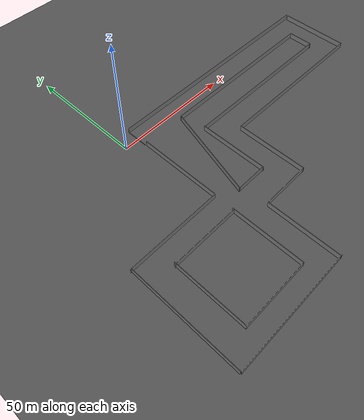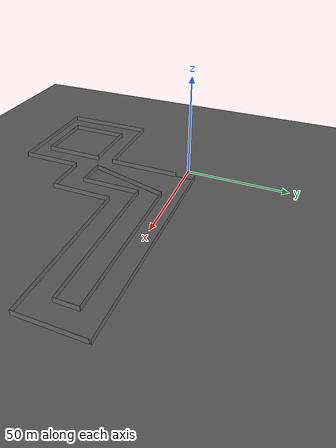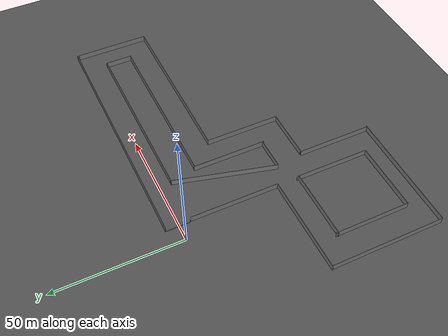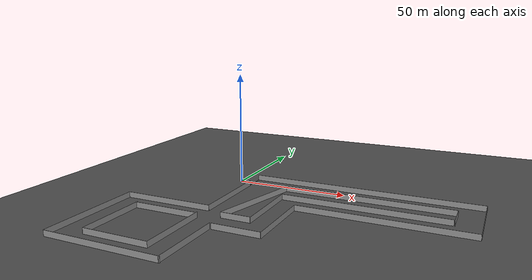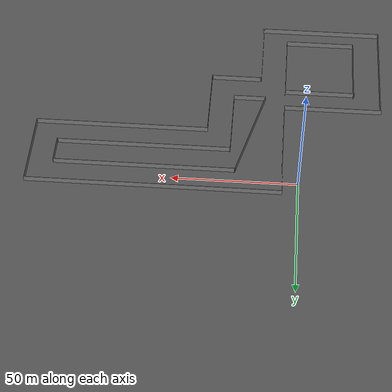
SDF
<sdf version="1.6">
 <world name="default">
  <light name="sun" type="directional">
   <pose>0 0 10 0 -0 0</pose>
   <diffuse>0.8 0.8 0.8 1</diffuse>
   <specular>0.2 0.2 0.2 1</specular>
   <attenuation>
    <range>1000</range>
    <constant>0.9</constant>
    <linear>0.01</linear>
    <quadratic>0.001</quadratic>
   </attenuation>
   <direction>-0.5 0.1 -0.9</direction>
  </light>
  <physics name="default_physics" default="0" type="ode">
   <max_step_size>0.004</max_step_size>
   <real_time_factor>1</real_time_factor>
   <real_time_update_rate>250</real_time_update_rate>
   <ode>
    <solver>
     <type>quick</type>
     <iters>10</iters>
     <sor>1.3</sor>
     <use_dynamic_moi_rescaling>0</use_dynamic_moi_rescaling>
    </solver>
    <constraints>
     <cfm>0</cfm>
     <erp>0.2</erp>
     <contact_max_correcting_vel>100</contact_max_correcting_vel>
     <contact_surface_layer>0.001</contact_surface_layer>
    </constraints>
   </ode>
  </physics>
  <model name="ground_plane">
   <static>1</static>
   <link name="link">
    <collision name="collision">
     <geometry><plane><normal>0 0 1</normal><size>1000 1000</size></plane></geometry>
     <surface>
      <contact><collide_bitmask>65535</collide_bitmask></contact>
      <friction><ode><mu>100</mu><mu2>50</mu2></ode></friction>
     </surface>
    </collision>
    <visual name="visual">
     <cast_shadows>0</cast_shadows>
     <geometry><plane><normal>0 0 1</normal><size>1000 1000</size></plane></geometry>
     <material>
      <script><uri>file://media/materials/scripts/gazebo.material</uri><name>Gazebo/Grey</name></script>
     </material>
    </visual>
   </link>
  </model>
  <model name="asphalt_plane">
   <static>1</static>
   <link name="link">
    <collision name="collision"><geometry><box><size>500 500 0.1</size></box></geometry></collision>
    <visual name="visual">
     <cast_shadows>0</cast_shadows>
     <geometry><box><size>500 500 0.1</size></box></geometry>
     <material>
      <script>
       <uri>model://asphalt_plane/materials/scripts</uri>
       <uri>model://asphalt_plane/materials/textures</uri>
       <name>vrc/asphalt</name>
      </script>
     </material>
    </visual>
   </link>
  </model>
  <atmosphere type="adiabatic"/>
  <scene><ambient>0.4 0.4 0.4 1</ambient><background>0.7 0.7 0.7 1</background><shadows>1</shadows></scene>
  <spherical_coordinates>
   <surface_model>EARTH_WGS84</surface_model>
   <latitude_deg>0</latitude_deg>
   <longitude_deg>0</longitude_deg>
   <elevation>0</elevation>
   <heading_deg>0</heading_deg>
  </spherical_coordinates>
  <light name="user_point_light_0" type="point">
   <pose>6.97242 -0.875046 1 0 -0 0</pose>
   <diffuse>0.5 0.5 0.5 1</diffuse>
   <specular>0.1 0.1 0.1 1</specular>
   <attenuation>
    <range>20</range>
    <constant>0.5</constant>
    <linear>0.01</linear>
    <quadratic>0.001</quadratic>
   </attenuation>
   <cast_shadows>0</cast_shadows>
   <direction>0 0 -1</direction>
  </light>
  <gravity>0 0 -9.8</gravity>
  <magnetic_field>6e-06 2.3e-05 -4.2e-05</magnetic_field>
  <light name="user_point_light_0_clone" type="point">
   <pose>12.0757 -2.16521 1.5 0 -0 0</pose>
   <diffuse>0.5 0.5 0.5 1</diffuse>
   <specular>0.1 0.1 0.1 1</specular>
   <direction>0 0 -1</direction>
   <attenuation>
    <range>20</range>
    <constant>0.5</constant>
    <linear>0.01</linear>
    <quadratic>0.001</quadratic>
   </attenuation>
   <cast_shadows>0</cast_shadows>
  </light>
  <model name="stopmz_complex">
   <pose>37 -39.9999 0 0 -0 3.14</pose>
   <link name="Wall_10">
    <collision name="Wall_10_Collision">
     <geometry><box><size>30 0.15 2.5</size></box></geometry>
     <pose>0 0 1.25 0 -0 0</pose>
    </collision>
    <visual name="Wall_10_Visual">
     <pose>0 0 1.25 0 -0 0</pose>
     <geometry><box><size>30 0.15 2.5</size></box></geometry>
     <material>
      <script><uri>file://media/materials/scripts/gazebo.material</uri><name>Gazebo/Grey</name></script>
      <ambient>1 1 1 1</ambient>
     </material>
     <meta><layer>0</layer></meta>
    </visual>
    <pose>20.3417 30.2503 0 0 -0 1.5708</pose>
   </link>
   <link name="Wall_14">
    <collision name="Wall_14_Collision">
     <geometry><box><size>50 0.15 2.5</size></box></geometry>
     <pose>0 0 1.25 0 -0 0</pose>
    </collision>
    <visual name="Wall_14_Visual">
     <pose>0 0 1.25 0 -0 0</pose>
     <geometry><box><size>50 0.15 2.5</size></box></geometry>
     <material>
      <script><uri>file://media/materials/scripts/gazebo.material</uri><name>Gazebo/Grey</name></script>
      <ambient>1 1 1 1</ambient>
     </material>
     <meta><layer>0</layer></meta>
    </visual>
    <pose>44.8699 45.1097 0 0 -0 0</pose>
   </link>
   <link name="Wall_16">
    <collision name="Wall_16_Collision">
     <geometry><box><size>45 0.15 2.5</size></box></geometry>
     <pose>0 0 1.25 0 -0 0</pose>
    </collision>
    <visual name="Wall_16_Visual">
     <pose>0 0 1.25 0 -0 0</pose>
     <geometry><box><size>45 0.15 2.5</size></box></geometry>
     <material>
      <script><uri>file://media/materials/scripts/gazebo.material</uri><name>Gazebo/Grey</name></script>
      <ambient>1 1 1 1</ambient>
     </material>
     <meta><layer>0</layer></meta>
    </visual>
    <pose>69.9817 22.3555 0 0 -0 -1.5708</pose>
   </link>
   <link name="Wall_18">
    <collision name="Wall_18_Collision">
     <geometry><box><size>40 0.15 2.5</size></box></geometry>
     <pose>0 0 1.25 0 -0 0</pose>
    </collision>
    <visual name="Wall_18_Visual">
     <pose>0 0 1.25 0 -0 0</pose>
     <geometry><box><size>40 0.15 2.5</size></box></geometry>
     <material>
      <script><uri>file://media/materials/scripts/gazebo.material</uri><name>Gazebo/Grey</name></script>
      <ambient>1 1 1 1</ambient>
     </material>
     <meta><layer>0</layer></meta>
    </visual>
    <pose>50.4137 -0.283499 0 0 -0 3.14159</pose>
   </link>
   <link name="Wall_2">
    <collision name="Wall_2_Collision">
     <geometry><box><size>30 0.15 2.5</size></box></geometry>
     <pose>0 0 1.25 0 -0 0</pose>
    </collision>
    <visual name="Wall_2_Visual">
     <pose>0 0 1.25 0 -0 0</pose>
     <geometry><box><size>30 0.15 2.5</size></box></geometry>
     <material>
      <script><uri>file://media/materials/scripts/gazebo.material</uri><name>Gazebo/Grey</name></script>
      <ambient>1 1 1 1</ambient>
     </material>
     <meta><layer>0</layer></meta>
    </visual>
    <pose>-70.2866 -29.4764 0 0 -0 1.5708</pose>
   </link>
   <link name="Wall_20">
    <collision name="Wall_20_Collision">
     <geometry><box><size>35.25 0.15 2.5</size></box></geometry>
     <pose>0 0 1.25 0 -0 0</pose>
    </collision>
    <visual name="Wall_20_Visual">
     <pose>0 0 1.25 0 -0 0</pose>
     <geometry><box><size>35.25 0.15 2.5</size></box></geometry>
     <material>
      <script><uri>file://media/materials/scripts/gazebo.material</uri><name>Gazebo/Grey</name></script>
      <ambient>1 1 1 1</ambient>
     </material>
     <meta><layer>0</layer></meta>
    </visual>
    <pose>30.4887 -17.8335 0 0 -0 -1.5708</pose>
   </link>
   <link name="Wall_22">
    <collision name="Wall_22_Collision">
     <geometry><box><size>9.5 0.15 0.2</size></box></geometry>
     <pose>0 0 0.1 0 -0 0</pose>
    </collision>
    <visual name="Wall_22_Visual">
     <pose>0 0 0.1 0 -0 0</pose>
     <geometry><box><size>9.5 0.15 0.2</size></box></geometry>
     <material>
      <script><uri>file://media/materials/scripts/gazebo.material</uri><name>Gazebo/Grey</name></script>
      <ambient>1 1 1 1</ambient>
     </material>
     <meta><layer>0</layer></meta>
    </visual>
    <pose>30.7613 -40.5003 0 0 -0 -1.5708</pose>
   </link>
   <link name="Wall_24">
    <collision name="Wall_24_Collision">
     <geometry><box><size>101.25 0.15 2.5</size></box></geometry>
     <pose>0 0 1.25 0 -0 0</pose>
    </collision>
    <visual name="Wall_24_Visual">
     <pose>0 0 1.25 0 -0 0</pose>
     <geometry><box><size>101.25 0.15 2.5</size></box></geometry>
     <material>
      <script><uri>file://media/materials/scripts/gazebo.material</uri><name>Gazebo/Grey</name></script>
      <ambient>1 1 1 1</ambient>
     </material>
     <meta><layer>0</layer></meta>
    </visual>
    <pose>-19.7887 -45.1753 0 0 -0 3.14159</pose>
   </link>
   <link name="Wall_28">
    <collision name="Wall_28_Collision">
     <geometry><box><size>72.5 0.15 2.5</size></box></geometry>
     <pose>0 0 1.25 0 -0 0</pose>
    </collision>
    <visual name="Wall_28_Visual">
     <pose>0 0 1.25 0 -0 0</pose>
     <geometry><box><size>72.5 0.15 2.5</size></box></geometry>
     <material>
      <script><uri>file://media/materials/scripts/gazebo.material</uri><name>Gazebo/Grey</name></script>
      <ambient>1 1 1 1</ambient>
     </material>
     <meta><layer>0</layer></meta>
    </visual>
    <pose>-24.2011 -35.2164 0 0 -0 3.14159</pose>
   </link>
   <link name="Wall_32">
    <collision name="Wall_32_Collision">
     <geometry><box><size>11 0.15 2.5</size></box></geometry>
     <pose>0 0 1.25 0 -0 0</pose>
    </collision>
    <visual name="Wall_32_Visual">
     <pose>0 0 1.25 0 -0 0</pose>
     <geometry><box><size>11 0.15 2.5</size></box></geometry>
     <material>
      <script><uri>file://media/materials/scripts/gazebo.material</uri><name>Gazebo/Grey</name></script>
      <ambient>1 1 1 1</ambient>
     </material>
     <meta><layer>0</layer></meta>
    </visual>
    <pose>-60.3895 -29.8531 0 0 -0 1.5708</pose>
   </link>
   <link name="Wall_36">
    <collision name="Wall_36_Collision">
     <geometry><box><size>69.5 0.15 2.5</size></box></geometry>
     <pose>0 0 1.25 0 -0 0</pose>
    </collision>
    <visual name="Wall_36_Visual">
     <pose>0 0 1.25 0 -0 0</pose>
     <geometry><box><size>69.5 0.15 2.5</size></box></geometry>
     <material>
      <script><uri>file://media/materials/scripts/gazebo.material</uri><name>Gazebo/Grey</name></script>
      <ambient>1 1 1 1</ambient>
     </material>
     <meta><layer>0</layer></meta>
    </visual>
    <pose>-25.3219 -24.5616 0 0 -0 0</pose>
   </link>
   <link name="Wall_4">
    <collision name="Wall_4_Collision">
     <geometry><box><size>70 0.15 2.5</size></box></geometry>
     <pose>0 0 1.25 0 -0 0</pose>
    </collision>
    <visual name="Wall_4_Visual">
     <pose>0 0 1.25 0 -0 0</pose>
     <geometry><box><size>70 0.15 2.5</size></box></geometry>
     <material>
      <script><uri>file://media/materials/scripts/gazebo.material</uri><name>Gazebo/Grey</name></script>
      <ambient>1 1 1 1</ambient>
     </material>
     <meta><layer>0</layer></meta>
    </visual>
    <pose>-35.3616 -14.5514 0 0 -0 0</pose>
   </link>
   <link name="Wall_40">
    <collision name="Wall_40_Collision">
     <geometry><box><size>29.5 0.15 2.5</size></box></geometry>
     <pose>0 0 1.25 0 -0 0</pose>
    </collision>
    <visual name="Wall_40_Visual">
     <pose>0 0 1.25 0 -0 0</pose>
     <geometry><box><size>29.5 0.15 2.5</size></box></geometry>
     <material>
      <script><uri>file://media/materials/scripts/gazebo.material</uri><name>Gazebo/Grey</name></script>
      <ambient>1 1 1 1</ambient>
     </material>
     <meta><layer>0</layer></meta>
    </visual>
    <pose>9.41339 -10.1264 0 0 -0 1.5708</pose>
   </link>
   <link name="Wall_46">
    <collision name="Wall_46_Collision">
     <geometry><box><size>13 0.15 2.5</size></box></geometry>
     <pose>0 0 1.25 0 -0 0</pose>
    </collision>
    <visual name="Wall_46_Visual">
     <pose>0 0 1.25 0 -0 0</pose>
     <geometry><box><size>13 0.15 2.5</size></box></geometry>
     <material>
      <script><uri>file://media/materials/scripts/gazebo.material</uri><name>Gazebo/Grey</name></script>
      <ambient>1 1 1 1</ambient>
     </material>
     <meta><layer>0</layer></meta>
    </visual>
    <pose>15.8388 4.20914 0 0 -0 0</pose>
   </link>
   <link name="Wall_51">
    <collision name="Wall_51_Collision">
     <geometry><box><size>30 0.15 2.5</size></box></geometry>
     <pose>0 0 1.25 0 -0 0</pose>
    </collision>
    <visual name="Wall_51_Visual">
     <pose>0 0 1.25 0 -0 0</pose>
     <geometry><box><size>30 0.15 2.5</size></box></geometry>
     <material>
      <script><uri>file://media/materials/scripts/gazebo.material</uri><name>Gazebo/Grey</name></script>
      <ambient>1 1 1 1</ambient>
     </material>
     <meta><layer>0</layer></meta>
    </visual>
    <pose>30.6138 22.8841 0 0 -0 1.5708</pose>
   </link>
   <link name="Wall_52">
    <collision name="Wall_52_Collision">
     <geometry><box><size>28.5 0.15 2.5</size></box></geometry>
     <pose>0 0 1.25 0 -0 0</pose>
    </collision>
    <visual name="Wall_52_Visual">
     <pose>0 0 1.25 0 -0 0</pose>
     <geometry><box><size>28.5 0.15 2.5</size></box></geometry>
     <material>
      <script><uri>file://media/materials/scripts/gazebo.material</uri><name>Gazebo/Grey</name></script>
      <ambient>1 1 1 1</ambient>
     </material>
     <meta><layer>0</layer></meta>
    </visual>
    <pose>44.7888 37.8091 0 0 -0 0</pose>
   </link>
   <link name="Wall_53">
    <collision name="Wall_53_Collision">
     <geometry><box><size>30 0.15 2.5</size></box></geometry>
     <pose>0 0 1.25 0 -0 0</pose>
    </collision>
    <visual name="Wall_53_Visual">
     <pose>0 0 1.25 0 -0 0</pose>
     <geometry><box><size>30 0.15 2.5</size></box></geometry>
     <material>
      <script><uri>file://media/materials/scripts/gazebo.material</uri><name>Gazebo/Grey</name></script>
      <ambient>1 1 1 1</ambient>
     </material>
     <meta><layer>0</layer></meta>
    </visual>
    <pose>58.9638 22.8841 0 0 -0 -1.5708</pose>
   </link>
   <link name="Wall_55">
    <collision name="Wall_55_Collision">
     <geometry><box><size>41 0.15 2.5</size></box></geometry>
     <pose>0 0 1.25 0 -0 0</pose>
    </collision>
    <visual name="Wall_55_Visual">
     <pose>0 0 1.25 0 -0 0</pose>
     <geometry><box><size>41 0.15 2.5</size></box></geometry>
     <material>
      <script><uri>file://media/materials/scripts/gazebo.material</uri><name>Gazebo/Grey</name></script>
      <ambient>1 1 1 1</ambient>
     </material>
     <meta><layer>0</layer></meta>
    </visual>
    <pose>17.1498 -15.6336 0 0 -0 -1.8326</pose>
   </link>
   <link name="Wall_57">
    <collision name="Wall_57_Collision">
     <geometry><box><size>28.75 0.15 2.5</size></box></geometry>
     <pose>0 0 1.25 0 -0 0</pose>
    </collision>
    <visual name="Wall_57_Visual">
     <pose>0 0 1.25 0 -0 0</pose>
     <geometry><box><size>28.75 0.15 2.5</size></box></geometry>
     <material>
      <script><uri>file://media/materials/scripts/gazebo.material</uri><name>Gazebo/Grey</name></script>
      <ambient>1 1 1 1</ambient>
     </material>
     <meta><layer>0</layer></meta>
    </visual>
    <pose>45.0085 8.65198 0 0 -0 0</pose>
   </link>
   <link name="Wall_6">
    <collision name="Wall_6_Collision">
     <geometry><box><size>30 0.15 2.5</size></box></geometry>
     <pose>0 0 1.25 0 -0 0</pose>
    </collision>
    <visual name="Wall_6_Visual">
     <pose>0 0 1.25 0 -0 0</pose>
     <geometry><box><size>30 0.15 2.5</size></box></geometry>
     <material>
      <script><uri>file://media/materials/scripts/gazebo.material</uri><name>Gazebo/Grey</name></script>
      <ambient>1 1 1 1</ambient>
     </material>
     <meta><layer>0</layer></meta>
    </visual>
    <pose>-0.436613 0.373638 0 0 -0 1.5708</pose>
   </link>
   <link name="Wall_8">
    <collision name="Wall_8_Collision">
     <geometry><box><size>20 0.15 2.5</size></box></geometry>
     <pose>0 0 1.25 0 -0 0</pose>
    </collision>
    <visual name="Wall_8_Visual">
     <pose>0 0 1.25 0 -0 0</pose>
     <geometry><box><size>20 0.15 2.5</size></box></geometry>
     <material>
      <script><uri>file://media/materials/scripts/gazebo.material</uri><name>Gazebo/Grey</name></script>
      <ambient>1 1 1 1</ambient>
     </material>
     <meta><layer>0</layer></meta>
    </visual>
    <pose>9.7941 15.2195 0 0 -0 0</pose>
   </link>
   <static>1</static>
  </model>
 </world>
</sdf>
